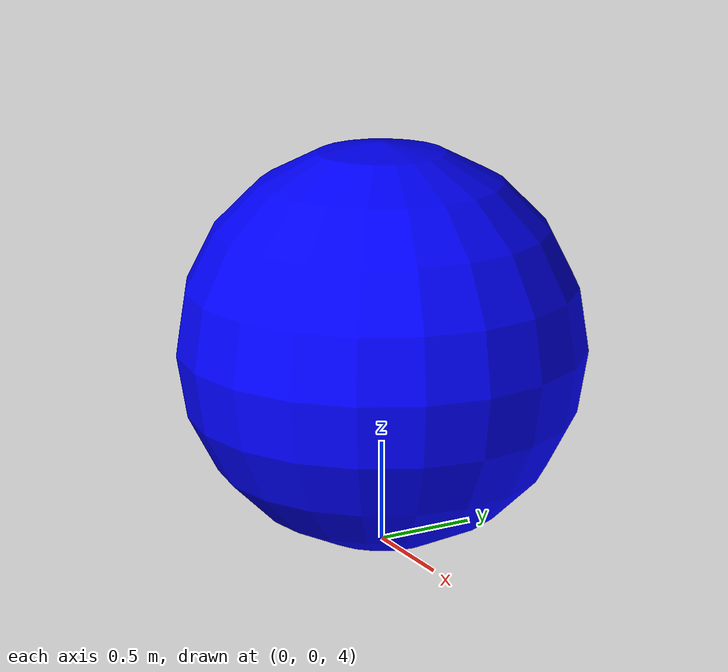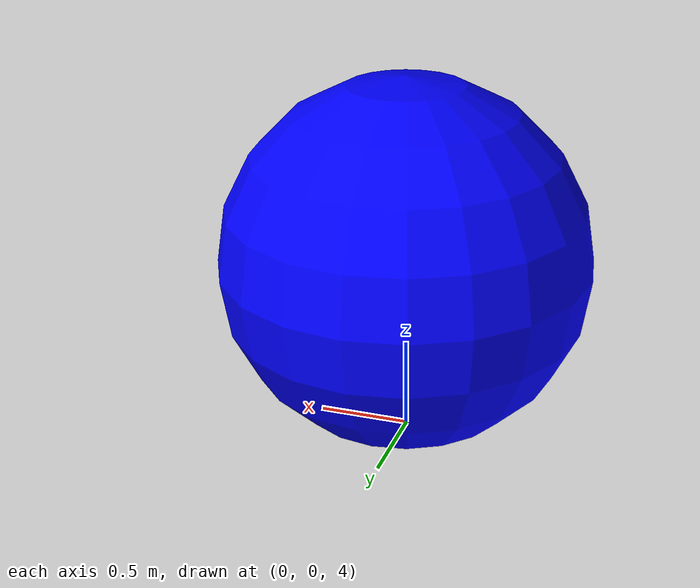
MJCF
<!--
  ~ Copyright (c) 2021.  -  present.  Kun Wang. All Rights Reserved.
  -->

<mujoco model="TT (v1.31)">
    <compiler angle="degree" coordinate="global" inertiafromgeom="true" autolimits="true">
        <lengthrange timestep="0.005"/>
    </compiler>

    <option timestep="0.005"
            gravity="0 0 -9.81"
            cone="elliptic"
            solver="Newton"
            integrator="Euler"
            iterations="100">
        <flag sensornoise="disable"
              frictionloss="disable"/>
    </option>

    <visual>
        <global offwidth="1024" offheight="768"/>
    </visual>

    <default>
        <geom conaffinity="1" condim="6" contype="1" rgba="0.75 0.75 0.75 1" size="0.014"
              density="1000" friction="1.000 1.00 1.000" solref="-1000 -5"/>
        <site type="sphere" size="0.005"/>
        <tendon width="0.1" rgba="1 0 0 0.5" damping="1000" stiffness="10000"/>
        <general ctrlrange="-1 1" dyntype="filter" gainprm="50000 0 0" biastype="none" dynprm="1 0 0" biasprm="0 0 0"/>
    </default>

    <asset>
        <texture builtin="gradient" height="100" rgb1="1 1 1" rgb2="0 0 0" type="skybox"
                 width="100"/>
        <texture builtin="flat" height="1278" mark="cross" markrgb="1 1 1" name="texgeom"
                 random="0.01" rgb1="0.8 0.6 0.4" rgb2="0.8 0.6 0.4" type="cube" width="127"/>
        <texture builtin="checker" height="100" name="texplane" rgb1="0 0 0" rgb2="0.8 0.8 0.8"
                 type="2d" width="100"/>
        <material name="MatPlane" reflectance="0." shininess="0.5" specular="0.5" texrepeat="30 30"
                  texture="texplane"/>
        <material name="geom" texture="texgeom" texuniform="true"/>
    </asset>

    <worldbody>
        <light cutoff="100" diffuse="1 1 1" dir="-0 0 -1.3" directional="true" exponent="1"
               pos="0 0 1.3" specular=".1 .1 .1"/>
        <geom conaffinity="1" material="MatPlane" name="floor" pos="0 0 0"
              rgba="0.8 0.9 0.8 1" size="400 400 10" type="plane"/>
        <camera name="camera" pos="0.879 -93.204 8.051" xyaxes="1.000 0.009 0.000 -0.001 0.086 0.996"/>

        <body>
            <freejoint/>
            <geom name="ball"
                  type="sphere"
                  mass="2.0"
                  pos="0     0     5"
                  size="1.0"
                  rgba="0 0 1 1"/>
        </body>
    </worldbody>

    <sensor>
        <framelinacc name="linacc_ball" objname="ball" objtype="geom"/>
        <frameangacc name="angacc_ball" objname="ball" objtype="geom"/>
        <framepos name="pos_ball" objname="ball" objtype="geom"/>
        <framelinvel name="linvel_ball" objname="ball" objtype="geom"/>
        <frameangvel name="angvel_ball" objname="ball" objtype="geom"/>
        <framequat name="quat_ball" objname="ball" objtype="geom"/>
    </sensor>

</mujoco>
